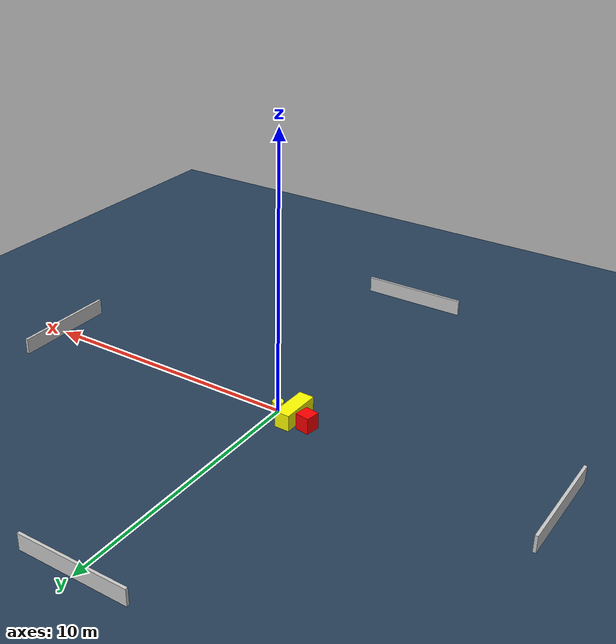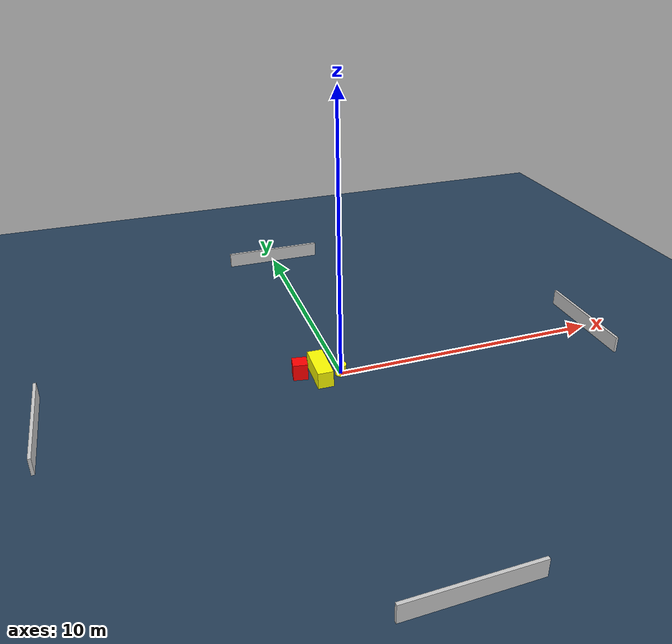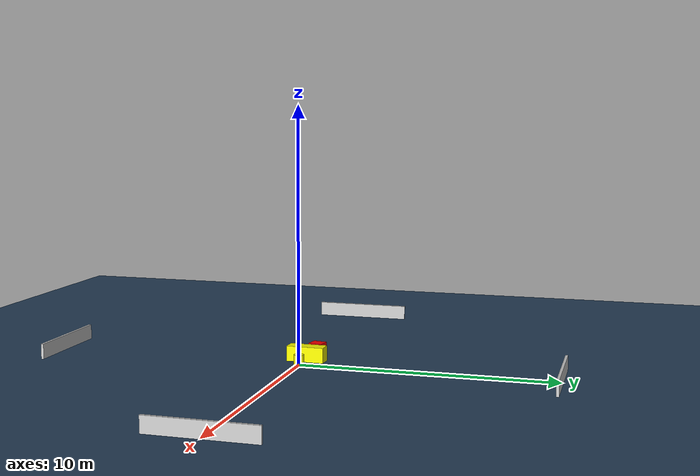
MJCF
<?xml version="1.0" ?>
<mujoco model="generated_environment">
  <option timestep="0.01" integrator="RK4" cone="elliptic"/>
  <default>
    <geom density="1"/>
  </default>
  <asset>
    <texture builtin="gradient" height="3072" name="skybox" rgb1="0.3 0.5 0.7" rgb2="0 0 0" type="skybox" width="512"/>
    <texture builtin="checker" height="300" name="groundplane" rgb1="0.2 0.3 0.4" rgb2="0.1 0.2 0.3" type="2d" width="300"/>
    <material name="groundplane" reflectance="0.2" texrepeat="5 5" texture="groundplane"/>
  </asset>
  <worldbody>
    <light dir="0 0 -1" directional="true" pos="0 0 1.5"/>
    <geom condim="3" friction="0.5 0.005 0.001" material="groundplane" name="floor" pos="0 0 0" size="0 0 0.05" type="plane"/>
    <body name="walls">
      <geom name="wall_1" condim="4" pos="-10.0 0.0 0.3" rgba="0.800000011920929 0.800000011920929 0.800000011920929 1.0" size="0.05 2.0 0.3" type="box"/>
      <geom name="wall_2" condim="4" pos="10.0 0.0 0.3" rgba="0.800000011920929 0.800000011920929 0.800000011920929 1.0" size="0.05 2.0 0.3" type="box"/>
      <geom name="wall_3" condim="4" pos="0.0 -10.0 0.3" rgba="0.800000011920929 0.800000011920929 0.800000011920929 1.0" size="2.0 0.05 0.3" type="box"/>
      <geom name="wall_4" condim="4" pos="0.0 10.0 0.3" rgba="0.800000011920929 0.800000011920929 0.800000011920929 1.0" size="2.0 0.05 0.3" type="box"/>
    </body>
    <body name="robot">
      <joint name="joint_x" type="slide" pos="0 0 0" axis="1 0 0"/>
      <joint name="joint_y" type="slide" pos="0 0 0" axis="0 1 0"/>
      <geom name="robot" type="cylinder" pos="0.0 0.0 0.2" size="0.2 0.2 0.0" mass="5.0" friction="1.0 0.005 0.0001" condim="4" rgba="1.0 1.0 0.0 1.0"/>
    </body>
    <body name="obstacle_1_movable">
      <geom name="obstacle_1_movable" condim="4" pos="-0.7238672702896124 0.10143488135946993 0.3" euler="0 0 268.6381797174878" friction="0.0 0.005 0.001" rgba="1.0 1.0 0.0 1.0" size="0.7435323437768162 0.27997876668626315 0.3" type="box" mass="0.1"/>
      <joint type="free"/>
    </body>
    <body name="obstacle_2_static">
      <geom name="obstacle_2_static" condim="4" pos="-1.3891714540251476 0.34007755593940636 0.3" euler="0 0 80.35070779872125" friction="0.0 0.005 0.001" rgba="1.0 0.0 0.0 1.0" size="0.2690637168294739 0.2604831912977814 0.3" type="box"/>
    </body>
  </worldbody>
  <actuator>
    <motor name="actuator_x" joint="joint_x" gear="1" ctrlrange="-1 1"/>
    <motor name="actuator_y" joint="joint_y" gear="1" ctrlrange="-1 1"/>
  </actuator>
</mujoco>
